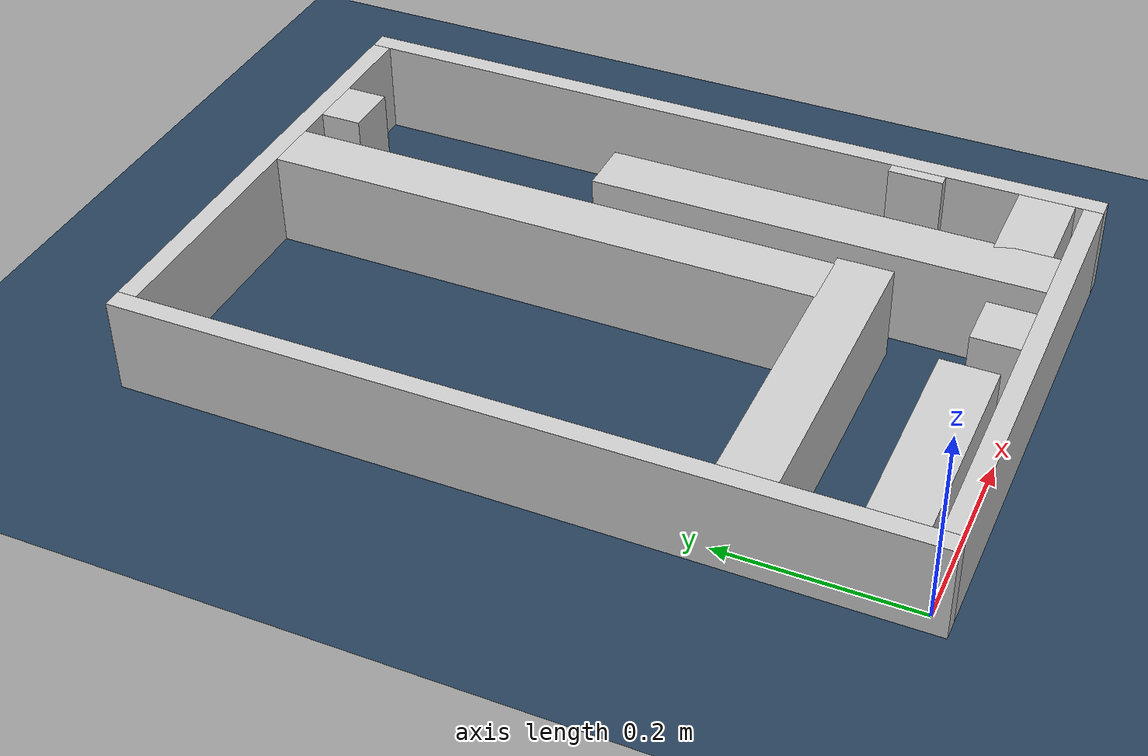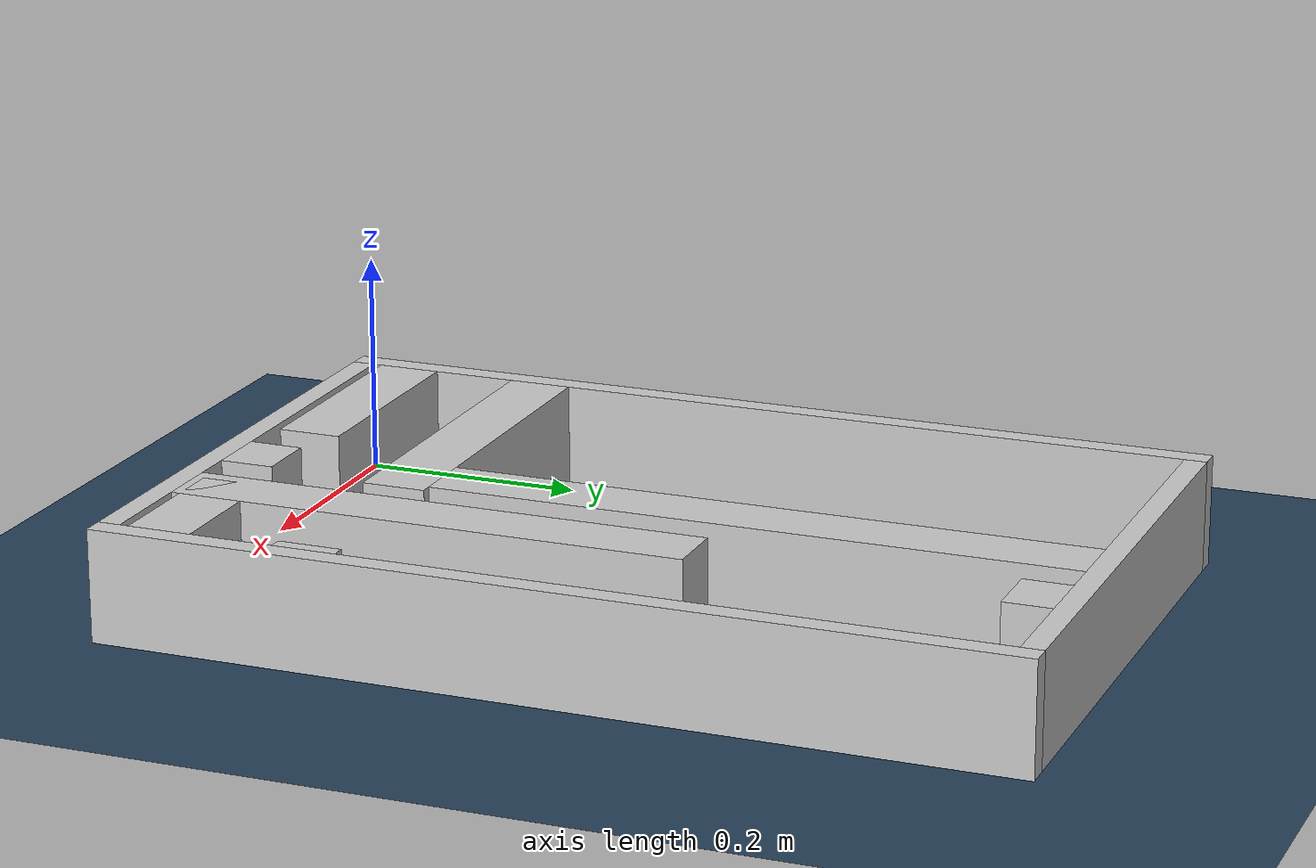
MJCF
<?xml version="1.0" ?>
<mujoco model="generated_real_template">
  <compiler angle="degree"/>
  <option timestep="0.002" integrator="implicitfast" iterations="100" cone="elliptic"/>
  <default>
    <geom density="1"/>
  </default>
  <asset>
    <texture builtin="gradient" height="3072" rgb1="0.3 0.5 0.7" rgb2="0 0 0" type="skybox" width="512"/>
    <texture builtin="checker" height="300" mark="edge" markrgb="0.8 0.8 0.8" name="groundplane" rgb1="0.2 0.3 0.4" rgb2="0.1 0.2 0.3" type="2d" width="300"/>
    <material name="groundplane" reflectance="0.2" texrepeat="5 5" texture="groundplane" texuniform="true"/>
  </asset>
  <worldbody>
    <light dir="0 0 -1" directional="true" pos="0 0 1.5"/>
    <geom name="floor" type="plane" condim="4" friction="0.5 0.005 0.001" material="groundplane" size="0 0 0.05"/>
    <body name="walls">
      <geom name="wall_boundary_left" type="box" condim="4" friction="1.0 0.005 0.0001" rgba="0.8 0.8 0.8 1" pos="-0.010000 0.387500 0.050000" euler="0 0 0.000000" size="0.010000 0.407500 0.050000"/>
      <geom name="wall_boundary_right" type="box" condim="4" friction="1.0 0.005 0.0001" rgba="0.8 0.8 0.8 1" pos="0.500000 0.387500 0.050000" euler="0 0 0.000000" size="0.010000 0.407500 0.050000"/>
      <geom name="wall_boundary_bottom" type="box" condim="4" friction="1.0 0.005 0.0001" rgba="0.8 0.8 0.8 1" pos="0.245000 -0.010000 0.050000" euler="0 0 0.000000" size="0.245000 0.010000 0.050000"/>
      <geom name="wall_boundary_top" type="box" condim="4" friction="1.0 0.005 0.0001" rgba="0.8 0.8 0.8 1" pos="0.245000 0.785000 0.050000" euler="0 0 0.000000" size="0.245000 0.010000 0.050000"/>
      <geom name="wall_inner_1_1" type="box" condim="4" friction="1.0 0.005 0.0001" rgba="0.8 0.8 0.8 1" pos="0.104946 0.036369 0.050000" euler="0 0 0.000000" size="0.104946 0.028500 0.050000"/>
      <geom name="wall_inner_1_2" type="box" condim="4" friction="1.0 0.005 0.0001" rgba="0.8 0.8 0.8 1" pos="0.422736 0.036369 0.050000" euler="0 0 0.000000" size="0.067264 0.028500 0.050000"/>
      <geom name="wall_inner_2_1" type="box" condim="4" friction="1.0 0.005 0.0001" rgba="0.8 0.8 0.8 1" pos="0.279160 0.024158 0.050000" euler="0 0 90.000000" size="0.024158 0.028500 0.050000"/>
      <geom name="wall_inner_2_2" type="box" condim="4" friction="1.0 0.005 0.0001" rgba="0.8 0.8 0.8 1" pos="0.279160 0.485441 0.050000" euler="0 0 90.000000" size="0.289559 0.028500 0.050000"/>
      <geom name="wall_inner_3_1" type="box" condim="4" friction="1.0 0.005 0.0001" rgba="0.8 0.8 0.8 1" pos="0.158747 0.168399 0.050000" euler="0 0 0.000000" size="0.158747 0.028500 0.050000"/>
      <geom name="wall_inner_3_2" type="box" condim="4" friction="1.0 0.005 0.0001" rgba="0.8 0.8 0.8 1" pos="0.483961 0.168399 0.050000" euler="0 0 0.000000" size="0.006039 0.028500 0.050000"/>
      <geom name="wall_inner_4_1" type="box" condim="4" friction="1.0 0.005 0.0001" rgba="0.8 0.8 0.8 1" pos="0.371091 0.231949 0.050000" euler="0 0 90.000000" size="0.231949 0.028500 0.050000"/>
      <geom name="wall_inner_4_2" type="box" condim="4" friction="1.0 0.005 0.0001" rgba="0.8 0.8 0.8 1" pos="0.371091 0.753359 0.050000" euler="0 0 90.000000" size="0.021641 0.028500 0.050000"/>
    </body>
  </worldbody>
</mujoco>
